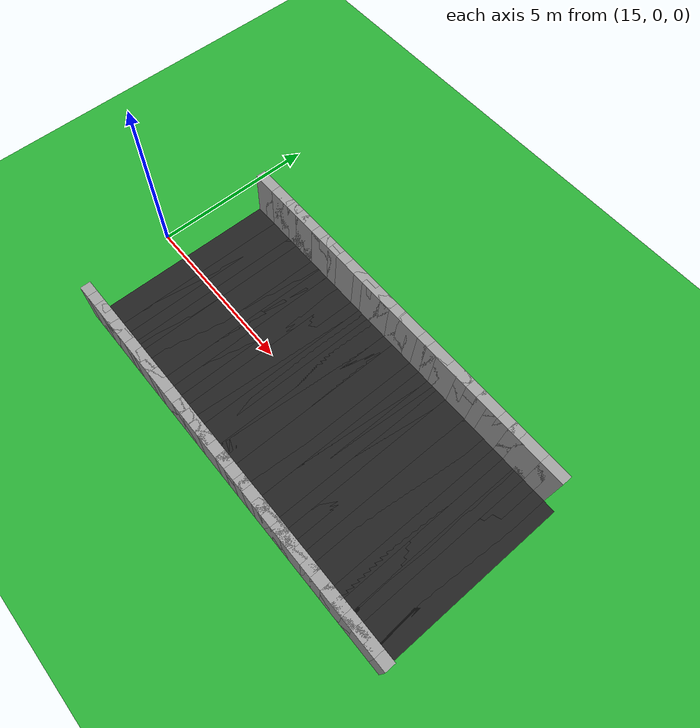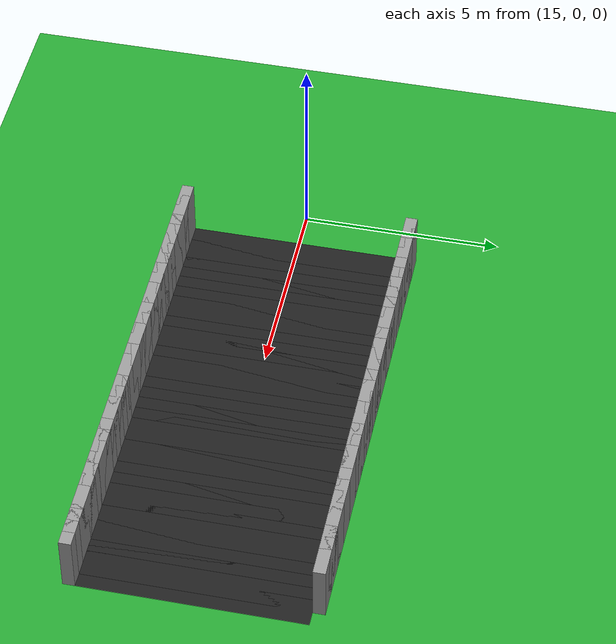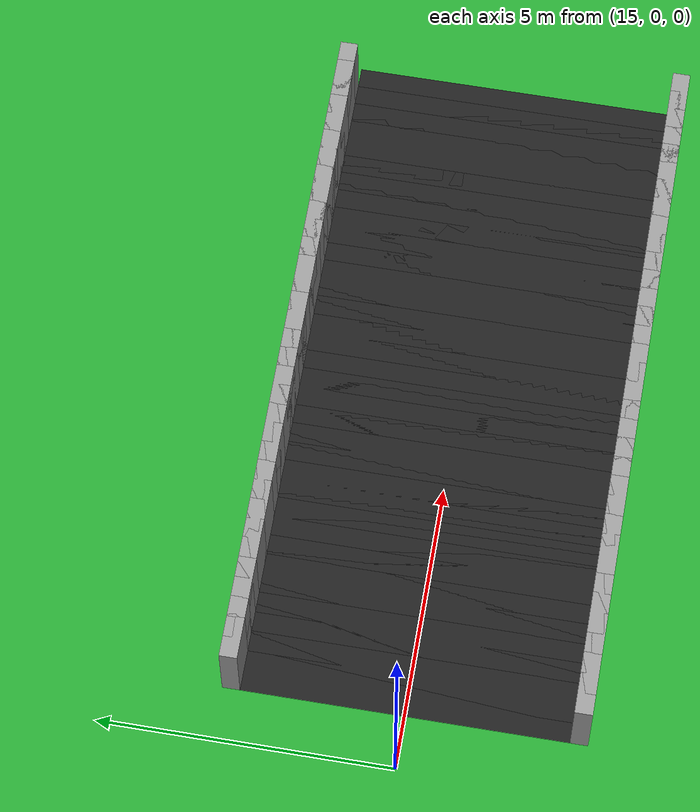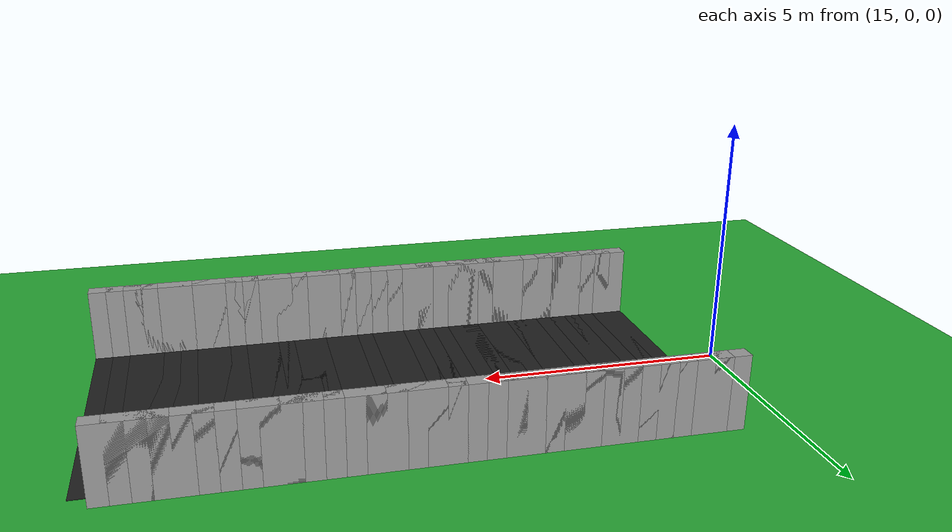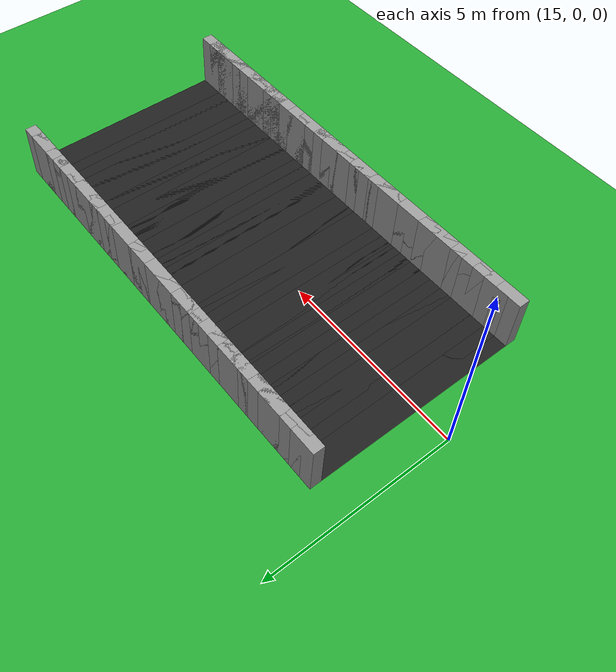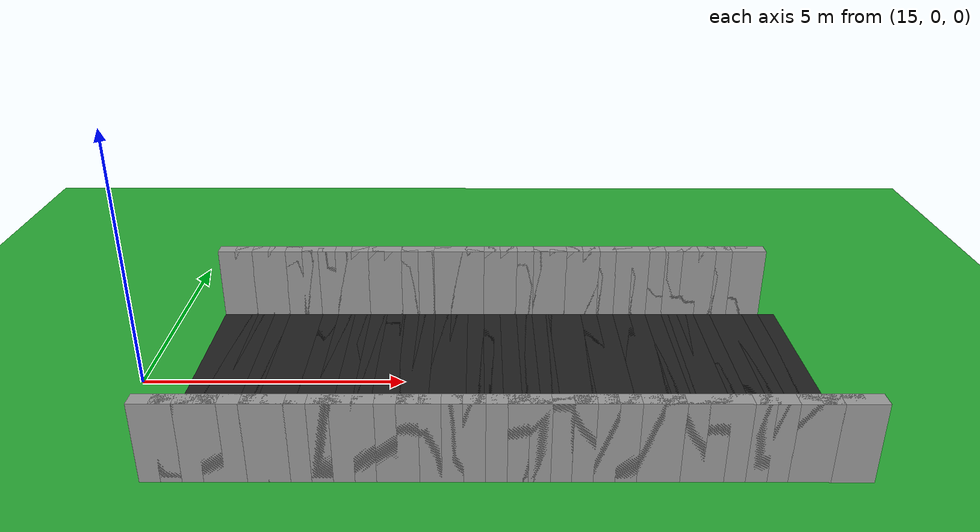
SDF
<sdf version="1.6">
 <world name="loop_speedloop">
  <include><uri>model://sun</uri></include>
  <model name="ground_plane">
   <static>true</static>
   <link name="link">
    <collision name="collision">
     <surface><friction><ode><mu>100</mu><mu2>50</mu2></ode></friction></surface>
     <geometry><plane><normal>0 0 1</normal><size>120 120</size></plane></geometry>
    </collision>
    <visual name="visual">
     <geometry><plane><normal>0 0 1</normal><size>120 120</size></plane></geometry>
     <material>
      <script><uri>file://media/materials/scripts/gazebo.material</uri><name>Gazebo/Green</name></script>
     </material>
    </visual>
   </link>
  </model>
  <model name="asphalt_46">
   <static>true</static>
   <pose>16.275 0.000 0.005 0 0 0.00000</pose>
   <link name="link">
    <visual name="visual">
     <geometry><box><size>0.710 5.500 0.010</size></box></geometry>
     <material>
      <script><uri>file://media/materials/scripts/gazebo.material</uri><name>Gazebo/Black</name></script>
     </material>
    </visual>
   </link>
  </model>
  <model name="curbL_46">
   <static>true</static>
   <pose>16.275 2.900 0.750 0 0 0.00000</pose>
   <link name="link">
    <collision name="collision"><geometry><box><size>0.710 0.300 1.500</size></box></geometry></collision>
    <visual name="visual">
     <geometry><box><size>0.710 0.300 1.500</size></box></geometry>
     <material>
      <script><uri>file://media/materials/scripts/gazebo.material</uri><name>Gazebo/Grey</name></script>
     </material>
    </visual>
   </link>
  </model>
  <model name="curbR_46">
   <static>true</static>
   <pose>16.275 -2.900 0.750 0 0 0.00000</pose>
   <link name="link">
    <collision name="collision"><geometry><box><size>0.710 0.300 1.500</size></box></geometry></collision>
    <visual name="visual">
     <geometry><box><size>0.710 0.300 1.500</size></box></geometry>
     <material>
      <script><uri>file://media/materials/scripts/gazebo.material</uri><name>Gazebo/Grey</name></script>
     </material>
    </visual>
   </link>
  </model>
  <model name="asphalt_47">
   <static>true</static>
   <pose>16.625 0.000 0.005 0 0 0.00000</pose>
   <link name="link">
    <visual name="visual">
     <geometry><box><size>0.710 5.500 0.010</size></box></geometry>
     <material>
      <script><uri>file://media/materials/scripts/gazebo.material</uri><name>Gazebo/Black</name></script>
     </material>
    </visual>
   </link>
  </model>
  <model name="curbL_47">
   <static>true</static>
   <pose>16.625 2.900 0.750 0 0 0.00000</pose>
   <link name="link">
    <collision name="collision"><geometry><box><size>0.710 0.300 1.500</size></box></geometry></collision>
    <visual name="visual">
     <geometry><box><size>0.710 0.300 1.500</size></box></geometry>
     <material>
      <script><uri>file://media/materials/scripts/gazebo.material</uri><name>Gazebo/Grey</name></script>
     </material>
    </visual>
   </link>
  </model>
  <model name="curbR_47">
   <static>true</static>
   <pose>16.625 -2.900 0.750 0 0 0.00000</pose>
   <link name="link">
    <collision name="collision"><geometry><box><size>0.710 0.300 1.500</size></box></geometry></collision>
    <visual name="visual">
     <geometry><box><size>0.710 0.300 1.500</size></box></geometry>
     <material>
      <script><uri>file://media/materials/scripts/gazebo.material</uri><name>Gazebo/Grey</name></script>
     </material>
    </visual>
   </link>
  </model>
  <model name="asphalt_48">
   <static>true</static>
   <pose>16.975 0.000 0.005 0 0 0.00000</pose>
   <link name="link">
    <visual name="visual">
     <geometry><box><size>0.710 5.500 0.010</size></box></geometry>
     <material>
      <script><uri>file://media/materials/scripts/gazebo.material</uri><name>Gazebo/Black</name></script>
     </material>
    </visual>
   </link>
  </model>
  <model name="curbL_48">
   <static>true</static>
   <pose>16.975 2.900 0.750 0 0 0.00000</pose>
   <link name="link">
    <collision name="collision"><geometry><box><size>0.710 0.300 1.500</size></box></geometry></collision>
    <visual name="visual">
     <geometry><box><size>0.710 0.300 1.500</size></box></geometry>
     <material>
      <script><uri>file://media/materials/scripts/gazebo.material</uri><name>Gazebo/Grey</name></script>
     </material>
    </visual>
   </link>
  </model>
  <model name="curbR_48">
   <static>true</static>
   <pose>16.975 -2.900 0.750 0 0 0.00000</pose>
   <link name="link">
    <collision name="collision"><geometry><box><size>0.710 0.300 1.500</size></box></geometry></collision>
    <visual name="visual">
     <geometry><box><size>0.710 0.300 1.500</size></box></geometry>
     <material>
      <script><uri>file://media/materials/scripts/gazebo.material</uri><name>Gazebo/Grey</name></script>
     </material>
    </visual>
   </link>
  </model>
  <model name="asphalt_49">
   <static>true</static>
   <pose>17.325 0.000 0.005 0 0 0.00000</pose>
   <link name="link">
    <visual name="visual">
     <geometry><box><size>0.710 5.500 0.010</size></box></geometry>
     <material>
      <script><uri>file://media/materials/scripts/gazebo.material</uri><name>Gazebo/Black</name></script>
     </material>
    </visual>
   </link>
  </model>
  <model name="curbL_49">
   <static>true</static>
   <pose>17.325 2.900 0.750 0 0 0.00000</pose>
   <link name="link">
    <collision name="collision"><geometry><box><size>0.710 0.300 1.500</size></box></geometry></collision>
    <visual name="visual">
     <geometry><box><size>0.710 0.300 1.500</size></box></geometry>
     <material>
      <script><uri>file://media/materials/scripts/gazebo.material</uri><name>Gazebo/Grey</name></script>
     </material>
    </visual>
   </link>
  </model>
  <model name="curbR_49">
   <static>true</static>
   <pose>17.325 -2.900 0.750 0 0 0.00000</pose>
   <link name="link">
    <collision name="collision"><geometry><box><size>0.710 0.300 1.500</size></box></geometry></collision>
    <visual name="visual">
     <geometry><box><size>0.710 0.300 1.500</size></box></geometry>
     <material>
      <script><uri>file://media/materials/scripts/gazebo.material</uri><name>Gazebo/Grey</name></script>
     </material>
    </visual>
   </link>
  </model>
  <model name="asphalt_50">
   <static>true</static>
   <pose>17.675 0.000 0.005 0 0 0.00000</pose>
   <link name="link">
    <visual name="visual">
     <geometry><box><size>0.710 5.500 0.010</size></box></geometry>
     <material>
      <script><uri>file://media/materials/scripts/gazebo.material</uri><name>Gazebo/Black</name></script>
     </material>
    </visual>
   </link>
  </model>
  <model name="curbL_50">
   <static>true</static>
   <pose>17.675 2.900 0.750 0 0 0.00000</pose>
   <link name="link">
    <collision name="collision"><geometry><box><size>0.710 0.300 1.500</size></box></geometry></collision>
    <visual name="visual">
     <geometry><box><size>0.710 0.300 1.500</size></box></geometry>
     <material>
      <script><uri>file://media/materials/scripts/gazebo.material</uri><name>Gazebo/Grey</name></script>
     </material>
    </visual>
   </link>
  </model>
  <model name="curbR_50">
   <static>true</static>
   <pose>17.675 -2.900 0.750 0 0 0.00000</pose>
   <link name="link">
    <collision name="collision"><geometry><box><size>0.710 0.300 1.500</size></box></geometry></collision>
    <visual name="visual">
     <geometry><box><size>0.710 0.300 1.500</size></box></geometry>
     <material>
      <script><uri>file://media/materials/scripts/gazebo.material</uri><name>Gazebo/Grey</name></script>
     </material>
    </visual>
   </link>
  </model>
  <model name="asphalt_51">
   <static>true</static>
   <pose>18.025 0.000 0.005 0 0 0.00000</pose>
   <link name="link">
    <visual name="visual">
     <geometry><box><size>0.710 5.500 0.010</size></box></geometry>
     <material>
      <script><uri>file://media/materials/scripts/gazebo.material</uri><name>Gazebo/Black</name></script>
     </material>
    </visual>
   </link>
  </model>
  <model name="curbL_51">
   <static>true</static>
   <pose>18.025 2.900 0.750 0 0 0.00000</pose>
   <link name="link">
    <collision name="collision"><geometry><box><size>0.710 0.300 1.500</size></box></geometry></collision>
    <visual name="visual">
     <geometry><box><size>0.710 0.300 1.500</size></box></geometry>
     <material>
      <script><uri>file://media/materials/scripts/gazebo.material</uri><name>Gazebo/Grey</name></script>
     </material>
    </visual>
   </link>
  </model>
  <model name="curbR_51">
   <static>true</static>
   <pose>18.025 -2.900 0.750 0 0 0.00000</pose>
   <link name="link">
    <collision name="collision"><geometry><box><size>0.710 0.300 1.500</size></box></geometry></collision>
    <visual name="visual">
     <geometry><box><size>0.710 0.300 1.500</size></box></geometry>
     <material>
      <script><uri>file://media/materials/scripts/gazebo.material</uri><name>Gazebo/Grey</name></script>
     </material>
    </visual>
   </link>
  </model>
  <model name="asphalt_52">
   <static>true</static>
   <pose>18.375 0.000 0.005 0 0 0.00000</pose>
   <link name="link">
    <visual name="visual">
     <geometry><box><size>0.710 5.500 0.010</size></box></geometry>
     <material>
      <script><uri>file://media/materials/scripts/gazebo.material</uri><name>Gazebo/Black</name></script>
     </material>
    </visual>
   </link>
  </model>
  <model name="curbL_52">
   <static>true</static>
   <pose>18.375 2.900 0.750 0 0 0.00000</pose>
   <link name="link">
    <collision name="collision"><geometry><box><size>0.710 0.300 1.500</size></box></geometry></collision>
    <visual name="visual">
     <geometry><box><size>0.710 0.300 1.500</size></box></geometry>
     <material>
      <script><uri>file://media/materials/scripts/gazebo.material</uri><name>Gazebo/Grey</name></script>
     </material>
    </visual>
   </link>
  </model>
  <model name="curbR_52">
   <static>true</static>
   <pose>18.375 -2.900 0.750 0 0 0.00000</pose>
   <link name="link">
    <collision name="collision"><geometry><box><size>0.710 0.300 1.500</size></box></geometry></collision>
    <visual name="visual">
     <geometry><box><size>0.710 0.300 1.500</size></box></geometry>
     <material>
      <script><uri>file://media/materials/scripts/gazebo.material</uri><name>Gazebo/Grey</name></script>
     </material>
    </visual>
   </link>
  </model>
  <model name="asphalt_53">
   <static>true</static>
   <pose>18.725 0.000 0.005 0 0 0.00000</pose>
   <link name="link">
    <visual name="visual">
     <geometry><box><size>0.710 5.500 0.010</size></box></geometry>
     <material>
      <script><uri>file://media/materials/scripts/gazebo.material</uri><name>Gazebo/Black</name></script>
     </material>
    </visual>
   </link>
  </model>
  <model name="curbL_53">
   <static>true</static>
   <pose>18.725 2.900 0.750 0 0 0.00000</pose>
   <link name="link">
    <collision name="collision"><geometry><box><size>0.710 0.300 1.500</size></box></geometry></collision>
    <visual name="visual">
     <geometry><box><size>0.710 0.300 1.500</size></box></geometry>
     <material>
      <script><uri>file://media/materials/scripts/gazebo.material</uri><name>Gazebo/Grey</name></script>
     </material>
    </visual>
   </link>
  </model>
  <model name="curbR_53">
   <static>true</static>
   <pose>18.725 -2.900 0.750 0 0 0.00000</pose>
   <link name="link">
    <collision name="collision"><geometry><box><size>0.710 0.300 1.500</size></box></geometry></collision>
    <visual name="visual">
     <geometry><box><size>0.710 0.300 1.500</size></box></geometry>
     <material>
      <script><uri>file://media/materials/scripts/gazebo.material</uri><name>Gazebo/Grey</name></script>
     </material>
    </visual>
   </link>
  </model>
  <model name="asphalt_54">
   <static>true</static>
   <pose>19.075 0.000 0.005 0 0 0.00000</pose>
   <link name="link">
    <visual name="visual">
     <geometry><box><size>0.710 5.500 0.010</size></box></geometry>
     <material>
      <script><uri>file://media/materials/scripts/gazebo.material</uri><name>Gazebo/Black</name></script>
     </material>
    </visual>
   </link>
  </model>
  <model name="curbL_54">
   <static>true</static>
   <pose>19.075 2.900 0.750 0 0 0.00000</pose>
   <link name="link">
    <collision name="collision"><geometry><box><size>0.710 0.300 1.500</size></box></geometry></collision>
    <visual name="visual">
     <geometry><box><size>0.710 0.300 1.500</size></box></geometry>
     <material>
      <script><uri>file://media/materials/scripts/gazebo.material</uri><name>Gazebo/Grey</name></script>
     </material>
    </visual>
   </link>
  </model>
  <model name="curbR_54">
   <static>true</static>
   <pose>19.075 -2.900 0.750 0 0 0.00000</pose>
   <link name="link">
    <collision name="collision"><geometry><box><size>0.710 0.300 1.500</size></box></geometry></collision>
    <visual name="visual">
     <geometry><box><size>0.710 0.300 1.500</size></box></geometry>
     <material>
      <script><uri>file://media/materials/scripts/gazebo.material</uri><name>Gazebo/Grey</name></script>
     </material>
    </visual>
   </link>
  </model>
  <model name="asphalt_55">
   <static>true</static>
   <pose>19.425 0.000 0.005 0 0 0.00000</pose>
   <link name="link">
    <visual name="visual">
     <geometry><box><size>0.710 5.500 0.010</size></box></geometry>
     <material>
      <script><uri>file://media/materials/scripts/gazebo.material</uri><name>Gazebo/Black</name></script>
     </material>
    </visual>
   </link>
  </model>
  <model name="curbL_55">
   <static>true</static>
   <pose>19.425 2.900 0.750 0 0 0.00000</pose>
   <link name="link">
    <collision name="collision"><geometry><box><size>0.710 0.300 1.500</size></box></geometry></collision>
    <visual name="visual">
     <geometry><box><size>0.710 0.300 1.500</size></box></geometry>
     <material>
      <script><uri>file://media/materials/scripts/gazebo.material</uri><name>Gazebo/Grey</name></script>
     </material>
    </visual>
   </link>
  </model>
  <model name="curbR_55">
   <static>true</static>
   <pose>19.425 -2.900 0.750 0 0 0.00000</pose>
   <link name="link">
    <collision name="collision"><geometry><box><size>0.710 0.300 1.500</size></box></geometry></collision>
    <visual name="visual">
     <geometry><box><size>0.710 0.300 1.500</size></box></geometry>
     <material>
      <script><uri>file://media/materials/scripts/gazebo.material</uri><name>Gazebo/Grey</name></script>
     </material>
    </visual>
   </link>
  </model>
  <model name="asphalt_56">
   <static>true</static>
   <pose>19.775 0.000 0.005 0 0 0.00000</pose>
   <link name="link">
    <visual name="visual">
     <geometry><box><size>0.710 5.500 0.010</size></box></geometry>
     <material>
      <script><uri>file://media/materials/scripts/gazebo.material</uri><name>Gazebo/Black</name></script>
     </material>
    </visual>
   </link>
  </model>
  <model name="curbL_56">
   <static>true</static>
   <pose>19.775 2.900 0.750 0 0 0.00000</pose>
   <link name="link">
    <collision name="collision"><geometry><box><size>0.710 0.300 1.500</size></box></geometry></collision>
    <visual name="visual">
     <geometry><box><size>0.710 0.300 1.500</size></box></geometry>
     <material>
      <script><uri>file://media/materials/scripts/gazebo.material</uri><name>Gazebo/Grey</name></script>
     </material>
    </visual>
   </link>
  </model>
  <model name="curbR_56">
   <static>true</static>
   <pose>19.775 -2.900 0.750 0 0 0.00000</pose>
   <link name="link">
    <collision name="collision"><geometry><box><size>0.710 0.300 1.500</size></box></geometry></collision>
    <visual name="visual">
     <geometry><box><size>0.710 0.300 1.500</size></box></geometry>
     <material>
      <script><uri>file://media/materials/scripts/gazebo.material</uri><name>Gazebo/Grey</name></script>
     </material>
    </visual>
   </link>
  </model>
  <model name="asphalt_57">
   <static>true</static>
   <pose>20.125 0.000 0.005 0 0 0.00000</pose>
   <link name="link">
    <visual name="visual">
     <geometry><box><size>0.710 5.500 0.010</size></box></geometry>
     <material>
      <script><uri>file://media/materials/scripts/gazebo.material</uri><name>Gazebo/Black</name></script>
     </material>
    </visual>
   </link>
  </model>
  <model name="curbL_57">
   <static>true</static>
   <pose>20.125 2.900 0.750 0 0 0.00000</pose>
   <link name="link">
    <collision name="collision"><geometry><box><size>0.710 0.300 1.500</size></box></geometry></collision>
    <visual name="visual">
     <geometry><box><size>0.710 0.300 1.500</size></box></geometry>
     <material>
      <script><uri>file://media/materials/scripts/gazebo.material</uri><name>Gazebo/Grey</name></script>
     </material>
    </visual>
   </link>
  </model>
  <model name="curbR_57">
   <static>true</static>
   <pose>20.125 -2.900 0.750 0 0 0.00000</pose>
   <link name="link">
    <collision name="collision"><geometry><box><size>0.710 0.300 1.500</size></box></geometry></collision>
    <visual name="visual">
     <geometry><box><size>0.710 0.300 1.500</size></box></geometry>
     <material>
      <script><uri>file://media/materials/scripts/gazebo.material</uri><name>Gazebo/Grey</name></script>
     </material>
    </visual>
   </link>
  </model>
  <model name="asphalt_58">
   <static>true</static>
   <pose>20.475 0.000 0.005 0 0 0.00000</pose>
   <link name="link">
    <visual name="visual">
     <geometry><box><size>0.710 5.500 0.010</size></box></geometry>
     <material>
      <script><uri>file://media/materials/scripts/gazebo.material</uri><name>Gazebo/Black</name></script>
     </material>
    </visual>
   </link>
  </model>
  <model name="curbL_58">
   <static>true</static>
   <pose>20.475 2.900 0.750 0 0 0.00000</pose>
   <link name="link">
    <collision name="collision"><geometry><box><size>0.710 0.300 1.500</size></box></geometry></collision>
    <visual name="visual">
     <geometry><box><size>0.710 0.300 1.500</size></box></geometry>
     <material>
      <script><uri>file://media/materials/scripts/gazebo.material</uri><name>Gazebo/Grey</name></script>
     </material>
    </visual>
   </link>
  </model>
  <model name="curbR_58">
   <static>true</static>
   <pose>20.475 -2.900 0.750 0 0 0.00000</pose>
   <link name="link">
    <collision name="collision"><geometry><box><size>0.710 0.300 1.500</size></box></geometry></collision>
    <visual name="visual">
     <geometry><box><size>0.710 0.300 1.500</size></box></geometry>
     <material>
      <script><uri>file://media/materials/scripts/gazebo.material</uri><name>Gazebo/Grey</name></script>
     </material>
    </visual>
   </link>
  </model>
  <model name="asphalt_59">
   <static>true</static>
   <pose>20.825 0.000 0.005 0 0 0.00000</pose>
   <link name="link">
    <visual name="visual">
     <geometry><box><size>0.710 5.500 0.010</size></box></geometry>
     <material>
      <script><uri>file://media/materials/scripts/gazebo.material</uri><name>Gazebo/Black</name></script>
     </material>
    </visual>
   </link>
  </model>
  <model name="curbL_59">
   <static>true</static>
   <pose>20.825 2.900 0.750 0 0 0.00000</pose>
   <link name="link">
    <collision name="collision"><geometry><box><size>0.710 0.300 1.500</size></box></geometry></collision>
    <visual name="visual">
     <geometry><box><size>0.710 0.300 1.500</size></box></geometry>
     <material>
      <script><uri>file://media/materials/scripts/gazebo.material</uri><name>Gazebo/Grey</name></script>
     </material>
    </visual>
   </link>
  </model>
  <model name="curbR_59">
   <static>true</static>
   <pose>20.825 -2.900 0.750 0 0 0.00000</pose>
   <link name="link">
    <collision name="collision"><geometry><box><size>0.710 0.300 1.500</size></box></geometry></collision>
    <visual name="visual">
     <geometry><box><size>0.710 0.300 1.500</size></box></geometry>
     <material>
      <script><uri>file://media/materials/scripts/gazebo.material</uri><name>Gazebo/Grey</name></script>
     </material>
    </visual>
   </link>
  </model>
  <model name="asphalt_60">
   <static>true</static>
   <pose>21.175 0.000 0.005 0 0 0.00000</pose>
   <link name="link">
    <visual name="visual">
     <geometry><box><size>0.710 5.500 0.010</size></box></geometry>
     <material>
      <script><uri>file://media/materials/scripts/gazebo.material</uri><name>Gazebo/Black</name></script>
     </material>
    </visual>
   </link>
  </model>
  <model name="curbL_60">
   <static>true</static>
   <pose>21.175 2.900 0.750 0 0 0.00000</pose>
   <link name="link">
    <collision name="collision"><geometry><box><size>0.710 0.300 1.500</size></box></geometry></collision>
    <visual name="visual">
     <geometry><box><size>0.710 0.300 1.500</size></box></geometry>
     <material>
      <script><uri>file://media/materials/scripts/gazebo.material</uri><name>Gazebo/Grey</name></script>
     </material>
    </visual>
   </link>
  </model>
  <model name="curbR_60">
   <static>true</static>
   <pose>21.175 -2.900 0.750 0 0 0.00000</pose>
   <link name="link">
    <collision name="collision"><geometry><box><size>0.710 0.300 1.500</size></box></geometry></collision>
    <visual name="visual">
     <geometry><box><size>0.710 0.300 1.500</size></box></geometry>
     <material>
      <script><uri>file://media/materials/scripts/gazebo.material</uri><name>Gazebo/Grey</name></script>
     </material>
    </visual>
   </link>
  </model>
  <model name="asphalt_61">
   <static>true</static>
   <pose>21.525 0.000 0.005 0 0 0.00000</pose>
   <link name="link">
    <visual name="visual">
     <geometry><box><size>0.710 5.500 0.010</size></box></geometry>
     <material>
      <script><uri>file://media/materials/scripts/gazebo.material</uri><name>Gazebo/Black</name></script>
     </material>
    </visual>
   </link>
  </model>
  <model name="curbL_61">
   <static>true</static>
   <pose>21.525 2.900 0.750 0 0 0.00000</pose>
   <link name="link">
    <collision name="collision"><geometry><box><size>0.710 0.300 1.500</size></box></geometry></collision>
    <visual name="visual">
     <geometry><box><size>0.710 0.300 1.500</size></box></geometry>
     <material>
      <script><uri>file://media/materials/scripts/gazebo.material</uri><name>Gazebo/Grey</name></script>
     </material>
    </visual>
   </link>
  </model>
  <model name="curbR_61">
   <static>true</static>
   <pose>21.525 -2.900 0.750 0 0 0.00000</pose>
   <link name="link">
    <collision name="collision"><geometry><box><size>0.710 0.300 1.500</size></box></geometry></collision>
    <visual name="visual">
     <geometry><box><size>0.710 0.300 1.500</size></box></geometry>
     <material>
      <script><uri>file://media/materials/scripts/gazebo.material</uri><name>Gazebo/Grey</name></script>
     </material>
    </visual>
   </link>
  </model>
  <model name="asphalt_62">
   <static>true</static>
   <pose>21.875 0.000 0.005 0 0 0.00000</pose>
   <link name="link">
    <visual name="visual">
     <geometry><box><size>0.710 5.500 0.010</size></box></geometry>
     <material>
      <script><uri>file://media/materials/scripts/gazebo.material</uri><name>Gazebo/Black</name></script>
     </material>
    </visual>
   </link>
  </model>
  <model name="curbL_62">
   <static>true</static>
   <pose>21.875 2.900 0.750 0 0 0.00000</pose>
   <link name="link">
    <collision name="collision"><geometry><box><size>0.710 0.300 1.500</size></box></geometry></collision>
    <visual name="visual">
     <geometry><box><size>0.710 0.300 1.500</size></box></geometry>
     <material>
      <script><uri>file://media/materials/scripts/gazebo.material</uri><name>Gazebo/Grey</name></script>
     </material>
    </visual>
   </link>
  </model>
  <model name="curbR_62">
   <static>true</static>
   <pose>21.875 -2.900 0.750 0 0 0.00000</pose>
   <link name="link">
    <collision name="collision"><geometry><box><size>0.710 0.300 1.500</size></box></geometry></collision>
    <visual name="visual">
     <geometry><box><size>0.710 0.300 1.500</size></box></geometry>
     <material>
      <script><uri>file://media/materials/scripts/gazebo.material</uri><name>Gazebo/Grey</name></script>
     </material>
    </visual>
   </link>
  </model>
  <model name="asphalt_63">
   <static>true</static>
   <pose>22.225 0.000 0.005 0 0 0.00000</pose>
   <link name="link">
    <visual name="visual">
     <geometry><box><size>0.710 5.500 0.010</size></box></geometry>
     <material>
      <script><uri>file://media/materials/scripts/gazebo.material</uri><name>Gazebo/Black</name></script>
     </material>
    </visual>
   </link>
  </model>
  <model name="curbL_63">
   <static>true</static>
   <pose>22.225 2.900 0.750 0 0 0.00000</pose>
   <link name="link">
    <collision name="collision"><geometry><box><size>0.710 0.300 1.500</size></box></geometry></collision>
    <visual name="visual">
     <geometry><box><size>0.710 0.300 1.500</size></box></geometry>
     <material>
      <script><uri>file://media/materials/scripts/gazebo.material</uri><name>Gazebo/Grey</name></script>
     </material>
    </visual>
   </link>
  </model>
  <model name="curbR_63">
   <static>true</static>
   <pose>22.225 -2.900 0.750 0 0 0.00000</pose>
   <link name="link">
    <collision name="collision"><geometry><box><size>0.710 0.300 1.500</size></box></geometry></collision>
    <visual name="visual">
     <geometry><box><size>0.710 0.300 1.500</size></box></geometry>
     <material>
      <script><uri>file://media/materials/scripts/gazebo.material</uri><name>Gazebo/Grey</name></script>
     </material>
    </visual>
   </link>
  </model>
  <model name="asphalt_64">
   <static>true</static>
   <pose>22.575 0.000 0.005 0 0 0.00000</pose>
   <link name="link">
    <visual name="visual">
     <geometry><box><size>0.710 5.500 0.010</size></box></geometry>
     <material>
      <script><uri>file://media/materials/scripts/gazebo.material</uri><name>Gazebo/Black</name></script>
     </material>
    </visual>
   </link>
  </model>
  <model name="curbL_64">
   <static>true</static>
   <pose>22.575 2.900 0.750 0 0 0.00000</pose>
   <link name="link">
    <collision name="collision"><geometry><box><size>0.710 0.300 1.500</size></box></geometry></collision>
    <visual name="visual">
     <geometry><box><size>0.710 0.300 1.500</size></box></geometry>
     <material>
      <script><uri>file://media/materials/scripts/gazebo.material</uri><name>Gazebo/Grey</name></script>
     </material>
    </visual>
   </link>
  </model>
  <model name="curbR_64">
   <static>true</static>
   <pose>22.575 -2.900 0.750 0 0 0.00000</pose>
   <link name="link">
    <collision name="collision"><geometry><box><size>0.710 0.300 1.500</size></box></geometry></collision>
    <visual name="visual">
     <geometry><box><size>0.710 0.300 1.500</size></box></geometry>
     <material>
      <script><uri>file://media/materials/scripts/gazebo.material</uri><name>Gazebo/Grey</name></script>
     </material>
    </visual>
   </link>
  </model>
  <model name="asphalt_65">
   <static>true</static>
   <pose>22.925 0.000 0.005 0 0 0.00000</pose>
   <link name="link">
    <visual name="visual">
     <geometry><box><size>0.710 5.500 0.010</size></box></geometry>
     <material>
      <script><uri>file://media/materials/scripts/gazebo.material</uri><name>Gazebo/Black</name></script>
     </material>
    </visual>
   </link>
  </model>
  <model name="curbL_65">
   <static>true</static>
   <pose>22.925 2.900 0.750 0 0 0.00000</pose>
   <link name="link">
    <collision name="collision"><geometry><box><size>0.710 0.300 1.500</size></box></geometry></collision>
    <visual name="visual">
     <geometry><box><size>0.710 0.300 1.500</size></box></geometry>
     <material>
      <script><uri>file://media/materials/scripts/gazebo.material</uri><name>Gazebo/Grey</name></script>
     </material>
    </visual>
   </link>
  </model>
  <model name="curbR_65">
   <static>true</static>
   <pose>22.925 -2.900 0.750 0 0 0.00000</pose>
   <link name="link">
    <collision name="collision"><geometry><box><size>0.710 0.300 1.500</size></box></geometry></collision>
    <visual name="visual">
     <geometry><box><size>0.710 0.300 1.500</size></box></geometry>
     <material>
      <script><uri>file://media/materials/scripts/gazebo.material</uri><name>Gazebo/Grey</name></script>
     </material>
    </visual>
   </link>
  </model>
  <model name="asphalt_66">
   <static>true</static>
   <pose>23.275 0.000 0.005 0 0 0.00000</pose>
   <link name="link">
    <visual name="visual">
     <geometry><box><size>0.710 5.500 0.010</size></box></geometry>
     <material>
      <script><uri>file://media/materials/scripts/gazebo.material</uri><name>Gazebo/Black</name></script>
     </material>
    </visual>
   </link>
  </model>
  <model name="curbL_66">
   <static>true</static>
   <pose>23.275 2.900 0.750 0 0 0.00000</pose>
   <link name="link">
    <collision name="collision"><geometry><box><size>0.710 0.300 1.500</size></box></geometry></collision>
    <visual name="visual">
     <geometry><box><size>0.710 0.300 1.500</size></box></geometry>
     <material>
      <script><uri>file://media/materials/scripts/gazebo.material</uri><name>Gazebo/Grey</name></script>
     </material>
    </visual>
   </link>
  </model>
  <model name="curbR_66">
   <static>true</static>
   <pose>23.275 -2.900 0.750 0 0 0.00000</pose>
   <link name="link">
    <collision name="collision"><geometry><box><size>0.710 0.300 1.500</size></box></geometry></collision>
    <visual name="visual">
     <geometry><box><size>0.710 0.300 1.500</size></box></geometry>
     <material>
      <script><uri>file://media/materials/scripts/gazebo.material</uri><name>Gazebo/Grey</name></script>
     </material>
    </visual>
   </link>
  </model>
  <model name="asphalt_67">
   <static>true</static>
   <pose>23.625 0.000 0.005 0 0 0.00000</pose>
   <link name="link">
    <visual name="visual">
     <geometry><box><size>0.710 5.500 0.010</size></box></geometry>
     <material>
      <script><uri>file://media/materials/scripts/gazebo.material</uri><name>Gazebo/Black</name></script>
     </material>
    </visual>
   </link>
  </model>
  <model name="curbL_67">
   <static>true</static>
   <pose>23.625 2.900 0.750 0 0 0.00000</pose>
   <link name="link">
    <collision name="collision"><geometry><box><size>0.710 0.300 1.500</size></box></geometry></collision>
    <visual name="visual">
     <geometry><box><size>0.710 0.300 1.500</size></box></geometry>
     <material>
      <script><uri>file://media/materials/scripts/gazebo.material</uri><name>Gazebo/Grey</name></script>
     </material>
    </visual>
   </link>
  </model>
  <model name="curbR_67">
   <static>true</static>
   <pose>23.625 -2.900 0.750 0 0 0.00000</pose>
   <link name="link">
    <collision name="collision"><geometry><box><size>0.710 0.300 1.500</size></box></geometry></collision>
    <visual name="visual">
     <geometry><box><size>0.710 0.300 1.500</size></box></geometry>
     <material>
      <script><uri>file://media/materials/scripts/gazebo.material</uri><name>Gazebo/Grey</name></script>
     </material>
    </visual>
   </link>
  </model>
  <model name="asphalt_68">
   <static>true</static>
   <pose>23.975 0.000 0.005 0 0 0.00000</pose>
   <link name="link">
    <visual name="visual">
     <geometry><box><size>0.710 5.500 0.010</size></box></geometry>
     <material>
      <script><uri>file://media/materials/scripts/gazebo.material</uri><name>Gazebo/Black</name></script>
     </material>
    </visual>
   </link>
  </model>
  <model name="curbL_68">
   <static>true</static>
   <pose>23.975 2.900 0.750 0 0 0.00000</pose>
   <link name="link">
    <collision name="collision"><geometry><box><size>0.710 0.300 1.500</size></box></geometry></collision>
    <visual name="visual">
     <geometry><box><size>0.710 0.300 1.500</size></box></geometry>
     <material>
      <script><uri>file://media/materials/scripts/gazebo.material</uri><name>Gazebo/Grey</name></script>
     </material>
    </visual>
   </link>
  </model>
  <model name="curbR_68">
   <static>true</static>
   <pose>23.975 -2.900 0.750 0 0 0.00000</pose>
   <link name="link">
    <collision name="collision"><geometry><box><size>0.710 0.300 1.500</size></box></geometry></collision>
    <visual name="visual">
     <geometry><box><size>0.710 0.300 1.500</size></box></geometry>
     <material>
      <script><uri>file://media/materials/scripts/gazebo.material</uri><name>Gazebo/Grey</name></script>
     </material>
    </visual>
   </link>
  </model>
  <model name="asphalt_69">
   <static>true</static>
   <pose>24.325 0.000 0.005 0 0 0.00000</pose>
   <link name="link">
    <visual name="visual">
     <geometry><box><size>0.710 5.500 0.010</size></box></geometry>
     <material>
      <script><uri>file://media/materials/scripts/gazebo.material</uri><name>Gazebo/Black</name></script>
     </material>
    </visual>
   </link>
  </model>
  <model name="curbL_69">
   <static>true</static>
   <pose>24.325 2.900 0.750 0 0 0.00000</pose>
   <link name="link">
    <collision name="collision"><geometry><box><size>0.710 0.300 1.500</size></box></geometry></collision>
    <visual name="visual">
     <geometry><box><size>0.710 0.300 1.500</size></box></geometry>
     <material>
      <script><uri>file://media/materials/scripts/gazebo.material</uri><name>Gazebo/Grey</name></script>
     </material>
    </visual>
   </link>
  </model>
  <model name="curbR_69">
   <static>true</static>
   <pose>24.325 -2.900 0.750 0 0 0.00000</pose>
   <link name="link">
    <collision name="collision"><geometry><box><size>0.710 0.300 1.500</size></box></geometry></collision>
    <visual name="visual">
     <geometry><box><size>0.710 0.300 1.500</size></box></geometry>
     <material>
      <script><uri>file://media/materials/scripts/gazebo.material</uri><name>Gazebo/Grey</name></script>
     </material>
    </visual>
   </link>
  </model>
  <model name="asphalt_70">
   <static>true</static>
   <pose>24.675 0.000 0.005 0 0 0.00000</pose>
   <link name="link">
    <visual name="visual">
     <geometry><box><size>0.710 5.500 0.010</size></box></geometry>
     <material>
      <script><uri>file://media/materials/scripts/gazebo.material</uri><name>Gazebo/Black</name></script>
     </material>
    </visual>
   </link>
  </model>
  <model name="curbL_70">
   <static>true</static>
   <pose>24.675 2.900 0.750 0 0 0.00000</pose>
   <link name="link">
    <collision name="collision"><geometry><box><size>0.710 0.300 1.500</size></box></geometry></collision>
    <visual name="visual">
     <geometry><box><size>0.710 0.300 1.500</size></box></geometry>
     <material>
      <script><uri>file://media/materials/scripts/gazebo.material</uri><name>Gazebo/Grey</name></script>
     </material>
    </visual>
   </link>
  </model>
  <model name="curbR_70">
   <static>true</static>
   <pose>24.675 -2.900 0.750 0 0 0.00000</pose>
   <link name="link">
    <collision name="collision"><geometry><box><size>0.710 0.300 1.500</size></box></geometry></collision>
    <visual name="visual">
     <geometry><box><size>0.710 0.300 1.500</size></box></geometry>
     <material>
      <script><uri>file://media/materials/scripts/gazebo.material</uri><name>Gazebo/Grey</name></script>
     </material>
    </visual>
   </link>
  </model>
  <model name="asphalt_71">
   <static>true</static>
   <pose>25.025 0.000 0.005 0 0 0.00000</pose>
   <link name="link">
    <visual name="visual">
     <geometry><box><size>0.710 5.500 0.010</size></box></geometry>
     <material>
      <script><uri>file://media/materials/scripts/gazebo.material</uri><name>Gazebo/Black</name></script>
     </material>
    </visual>
   </link>
  </model>
  <model name="curbL_71">
   <static>true</static>
   <pose>25.025 2.900 0.750 0 0 0.00000</pose>
   <link name="link">
    <collision name="collision"><geometry><box><size>0.710 0.300 1.500</size></box></geometry></collision>
    <visual name="visual">
     <geometry><box><size>0.710 0.300 1.500</size></box></geometry>
     <material>
      <script><uri>file://media/materials/scripts/gazebo.material</uri><name>Gazebo/Grey</name></script>
     </material>
    </visual>
   </link>
  </model>
  <model name="curbR_71">
   <static>true</static>
   <pose>25.025 -2.900 0.750 0 0 0.00000</pose>
   <link name="link">
    <collision name="collision"><geometry><box><size>0.710 0.300 1.500</size></box></geometry></collision>
    <visual name="visual">
     <geometry><box><size>0.710 0.300 1.500</size></box></geometry>
     <material>
      <script><uri>file://media/materials/scripts/gazebo.material</uri><name>Gazebo/Grey</name></script>
     </material>
    </visual>
   </link>
  </model>
  <model name="asphalt_72">
   <static>true</static>
   <pose>25.375 0.000 0.005 0 0 0.00000</pose>
   <link name="link">
    <visual name="visual">
     <geometry><box><size>0.710 5.500 0.010</size></box></geometry>
     <material>
      <script><uri>file://media/materials/scripts/gazebo.material</uri><name>Gazebo/Black</name></script>
     </material>
    </visual>
   </link>
  </model>
  <model name="curbL_72">
   <static>true</static>
   <pose>25.375 2.900 0.750 0 0 0.00000</pose>
   <link name="link">
    <collision name="collision"><geometry><box><size>0.710 0.300 1.500</size></box></geometry></collision>
    <visual name="visual">
     <geometry><box><size>0.710 0.300 1.500</size></box></geometry>
     <material>
      <script><uri>file://media/materials/scripts/gazebo.material</uri><name>Gazebo/Grey</name></script>
     </material>
    </visual>
   </link>
  </model>
  <model name="curbR_72">
   <static>true</static>
   <pose>25.375 -2.900 0.750 0 0 0.00000</pose>
   <link name="link">
    <collision name="collision"><geometry><box><size>0.710 0.300 1.500</size></box></geometry></collision>
    <visual name="visual">
     <geometry><box><size>0.710 0.300 1.500</size></box></geometry>
     <material>
      <script><uri>file://media/materials/scripts/gazebo.material</uri><name>Gazebo/Grey</name></script>
     </material>
    </visual>
   </link>
  </model>
  <model name="asphalt_73">
   <static>true</static>
   <pose>25.725 0.000 0.005 0 0 0.00000</pose>
   <link name="link">
    <visual name="visual">
     <geometry><box><size>0.710 5.500 0.010</size></box></geometry>
     <material>
      <script><uri>file://media/materials/scripts/gazebo.material</uri><name>Gazebo/Black</name></script>
     </material>
    </visual>
   </link>
  </model>
  <model name="curbL_73">
   <static>true</static>
   <pose>25.725 2.900 0.750 0 0 0.00000</pose>
   <link name="link">
    <collision name="collision"><geometry><box><size>0.710 0.300 1.500</size></box></geometry></collision>
    <visual name="visual">
     <geometry><box><size>0.710 0.300 1.500</size></box></geometry>
     <material>
      <script><uri>file://media/materials/scripts/gazebo.material</uri><name>Gazebo/Grey</name></script>
     </material>
    </visual>
   </link>
  </model>
  <model name="curbR_73">
   <static>true</static>
   <pose>25.725 -2.900 0.750 0 0 0.00000</pose>
   <link name="link">
    <collision name="collision"><geometry><box><size>0.710 0.300 1.500</size></box></geometry></collision>
    <visual name="visual">
     <geometry><box><size>0.710 0.300 1.500</size></box></geometry>
     <material>
      <script><uri>file://media/materials/scripts/gazebo.material</uri><name>Gazebo/Grey</name></script>
     </material>
    </visual>
   </link>
  </model>
  <model name="asphalt_74">
   <static>true</static>
   <pose>26.075 0.000 0.005 0 0 0.00000</pose>
   <link name="link">
    <visual name="visual">
     <geometry><box><size>0.710 5.500 0.010</size></box></geometry>
     <material>
      <script><uri>file://media/materials/scripts/gazebo.material</uri><name>Gazebo/Black</name></script>
     </material>
    </visual>
   </link>
  </model>
  <model name="curbL_74">
   <static>true</static>
   <pose>26.075 2.900 0.750 0 0 0.00000</pose>
   <link name="link">
    <collision name="collision"><geometry><box><size>0.710 0.300 1.500</size></box></geometry></collision>
    <visual name="visual">
     <geometry><box><size>0.710 0.300 1.500</size></box></geometry>
     <material>
      <script><uri>file://media/materials/scripts/gazebo.material</uri><name>Gazebo/Grey</name></script>
     </material>
    </visual>
   </link>
  </model>
  <model name="curbR_74">
   <static>true</static>
   <pose>26.075 -2.900 0.750 0 0 0.00000</pose>
   <link name="link">
    <collision name="collision"><geometry><box><size>0.710 0.300 1.500</size></box></geometry></collision>
    <visual name="visual">
     <geometry><box><size>0.710 0.300 1.500</size></box></geometry>
     <material>
      <script><uri>file://media/materials/scripts/gazebo.material</uri><name>Gazebo/Grey</name></script>
     </material>
    </visual>
   </link>
  </model>
  <model name="asphalt_75">
   <static>true</static>
   <pose>26.425 0.000 0.005 0 0 0.00000</pose>
   <link name="link">
    <visual name="visual">
     <geometry><box><size>0.710 5.500 0.010</size></box></geometry>
     <material>
      <script><uri>file://media/materials/scripts/gazebo.material</uri><name>Gazebo/Black</name></script>
     </material>
    </visual>
   </link>
  </model>
  <model name="curbL_75">
   <static>true</static>
   <pose>26.425 2.900 0.750 0 0 0.00000</pose>
   <link name="link">
    <collision name="collision"><geometry><box><size>0.710 0.300 1.500</size></box></geometry></collision>
    <visual name="visual">
     <geometry><box><size>0.710 0.300 1.500</size></box></geometry>
     <material>
      <script><uri>file://media/materials/scripts/gazebo.material</uri><name>Gazebo/Grey</name></script>
     </material>
    </visual>
   </link>
  </model>
  <model name="curbR_75">
   <static>true</static>
   <pose>26.425 -2.900 0.750 0 0 0.00000</pose>
   <link name="link">
    <collision name="collision"><geometry><box><size>0.710 0.300 1.500</size></box></geometry></collision>
    <visual name="visual">
     <geometry><box><size>0.710 0.300 1.500</size></box></geometry>
     <material>
      <script><uri>file://media/materials/scripts/gazebo.material</uri><name>Gazebo/Grey</name></script>
     </material>
    </visual>
   </link>
  </model>
  <model name="asphalt_76">
   <static>true</static>
   <pose>26.775 0.000 0.005 0 0 0.00000</pose>
   <link name="link">
    <visual name="visual">
     <geometry><box><size>0.710 5.500 0.010</size></box></geometry>
     <material>
      <script><uri>file://media/materials/scripts/gazebo.material</uri><name>Gazebo/Black</name></script>
     </material>
    </visual>
   </link>
  </model>
  <model name="curbL_76">
   <static>true</static>
   <pose>26.775 2.900 0.750 0 0 0.00000</pose>
   <link name="link">
    <collision name="collision"><geometry><box><size>0.710 0.300 1.500</size></box></geometry></collision>
    <visual name="visual">
     <geometry><box><size>0.710 0.300 1.500</size></box></geometry>
     <material>
      <script><uri>file://media/materials/scripts/gazebo.material</uri><name>Gazebo/Grey</name></script>
     </material>
    </visual>
   </link>
  </model>
  <model name="curbR_76">
   <static>true</static>
   <pose>26.775 -2.900 0.750 0 0 0.00000</pose>
   <link name="link">
    <collision name="collision"><geometry><box><size>0.710 0.300 1.500</size></box></geometry></collision>
    <visual name="visual">
     <geometry><box><size>0.710 0.300 1.500</size></box></geometry>
     <material>
      <script><uri>file://media/materials/scripts/gazebo.material</uri><name>Gazebo/Grey</name></script>
     </material>
    </visual>
   </link>
  </model>
  <model name="asphalt_77">
   <static>true</static>
   <pose>27.125 0.000 0.005 0 0 0.00000</pose>
   <link name="link">
    <visual name="visual">
     <geometry><box><size>0.710 5.500 0.010</size></box></geometry>
     <material>
      <script><uri>file://media/materials/scripts/gazebo.material</uri><name>Gazebo/Black</name></script>
     </material>
    </visual>
   </link>
  </model>
  <model name="curbL_77">
   <static>true</static>
   <pose>27.125 2.900 0.750 0 0 0.00000</pose>
   <link name="link">
    <collision name="collision"><geometry><box><size>0.710 0.300 1.500</size></box></geometry></collision>
    <visual name="visual">
     <geometry><box><size>0.710 0.300 1.500</size></box></geometry>
     <material>
      <script><uri>file://media/materials/scripts/gazebo.material</uri><name>Gazebo/Grey</name></script>
     </material>
    </visual>
   </link>
  </model>
  <model name="curbR_77">
   <static>true</static>
   <pose>27.125 -2.900 0.750 0 0 0.00000</pose>
   <link name="link">
    <collision name="collision"><geometry><box><size>0.710 0.300 1.500</size></box></geometry></collision>
    <visual name="visual">
     <geometry><box><size>0.710 0.300 1.500</size></box></geometry>
     <material>
      <script><uri>file://media/materials/scripts/gazebo.material</uri><name>Gazebo/Grey</name></script>
     </material>
    </visual>
   </link>
  </model>
  <model name="asphalt_78">
   <static>true</static>
   <pose>27.475 0.000 0.005 0 0 0.00000</pose>
   <link name="link">
    <visual name="visual">
     <geometry><box><size>0.710 5.500 0.010</size></box></geometry>
     <material>
      <script><uri>file://media/materials/scripts/gazebo.material</uri><name>Gazebo/Black</name></script>
     </material>
    </visual>
   </link>
  </model>
  <model name="curbR_78">
   <static>true</static>
   <pose>27.475 -2.900 0.750 0 0 0.00000</pose>
   <link name="link">
    <collision name="collision"><geometry><box><size>0.710 0.300 1.500</size></box></geometry></collision>
    <visual name="visual">
     <geometry><box><size>0.710 0.300 1.500</size></box></geometry>
     <material>
      <script><uri>file://media/materials/scripts/gazebo.material</uri><name>Gazebo/Grey</name></script>
     </material>
    </visual>
   </link>
  </model>
 </world>
</sdf>
